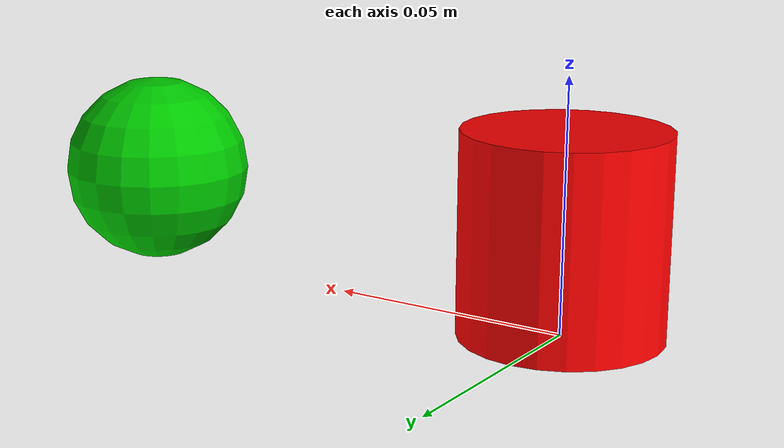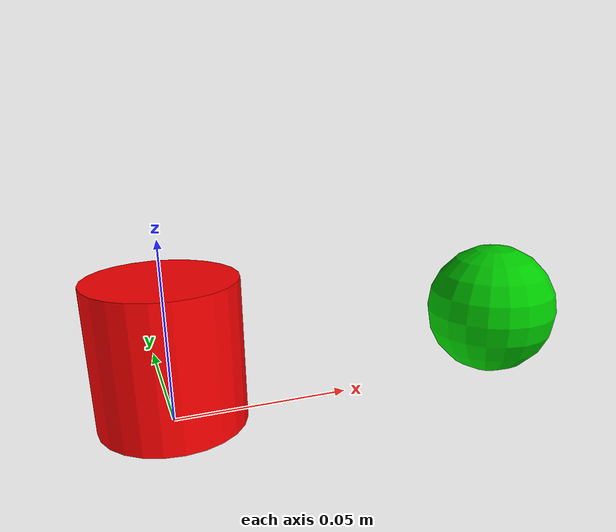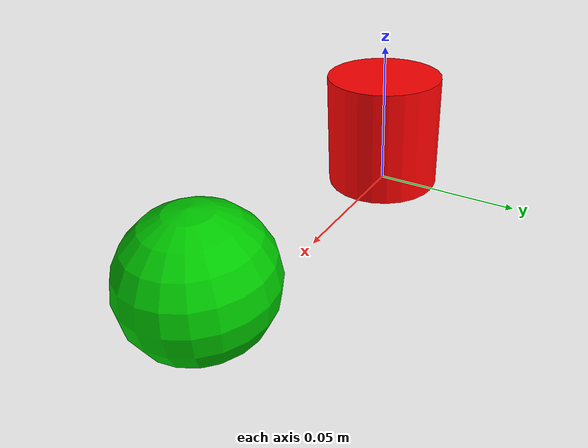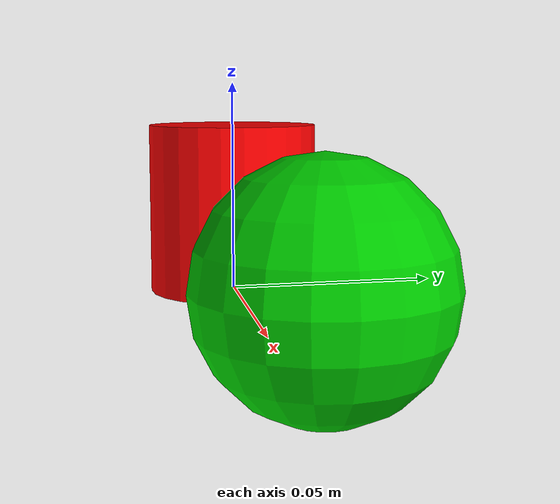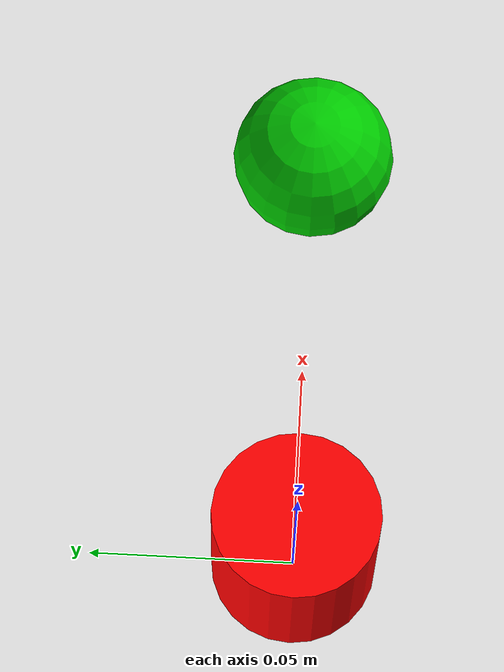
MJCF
<mujoco>
    <compiler angle="radian" inertiafromgeom="auto" inertiagrouprange="4 5"/>
    <asset>
        <texture name="T_block_wood" type="cube" file="../textures/wood4.png"/>

        <material name="block_col" rgba="0.3 0.3 1.0 0.5" shininess="0" specular="0"/>
        <material name="block_wood" texture="T_block_wood" shininess="1" reflectance=".7" specular=".5"/>
        <material name="block_red" rgba=".8 0 0 1" shininess=".2" reflectance=".2" specular=".5"/>

        <mesh file="../objects/meshes/block/block.stl" name="block"/>
    </asset>

    <default>
      <default class="block_base">
          <joint armature="0.001" damping="2" limited="true"/>
          <geom conaffinity="0" contype="0" group="1" type="mesh"/>
          <position ctrllimited="true" ctrlrange="0 1.57"/>
          <default class="block_col">
              <geom conaffinity="1" condim="4" contype="1" group="4" material="block_col" solimp="0.99 0.99 0.01" solref="0.01 1"/>
          </default>
      </default>
    </default>

    <worldbody>
      <body name="obj" pos="0 0 0.02">
          <joint name="objjoint" type="free" limited='false' damping="0." armature="0."/>

          <inertial pos="0 0 0" mass=".75" diaginertia="8.80012e-04 8.80012e-04 8.80012e-04"/>
          <geom name="objGeom" type="cylinder" pos="0 0 0" solimp="0.99 0.99 0.01"
                size="0.02 0.02" rgba="1 0 0 1" solref="0.01 1"
                contype="1" conaffinity="1" friction="1 0.1 0.002" condim="4" material="block_wood"
          />
      </body>

      <!-- push goal -->
      <site name="goal" pos="0.1 0 0.02" size="0.02"
            rgba="0 0.8 0 1"/>

    </worldbody>
</mujoco>
